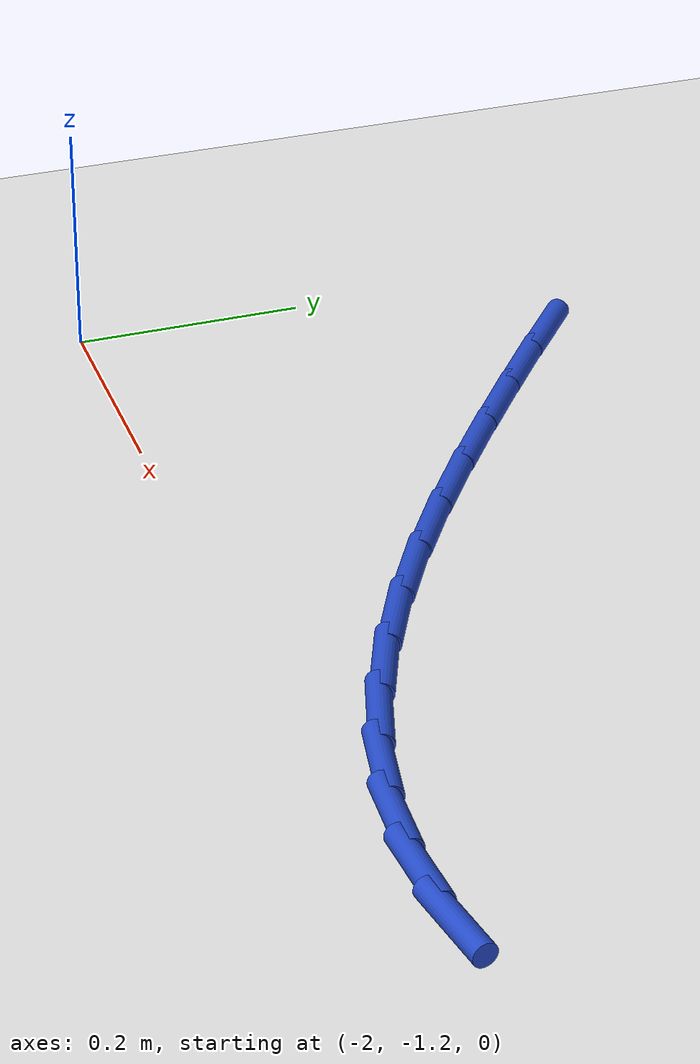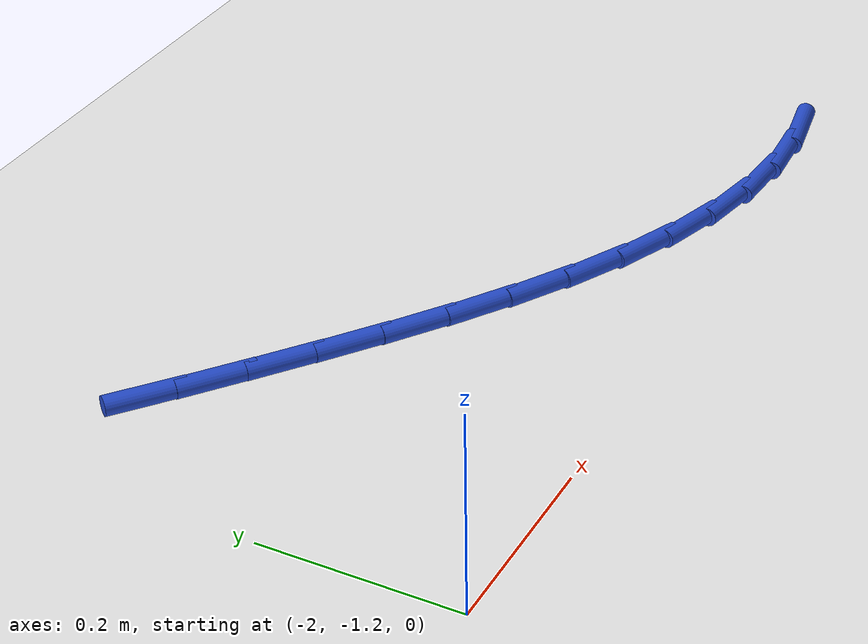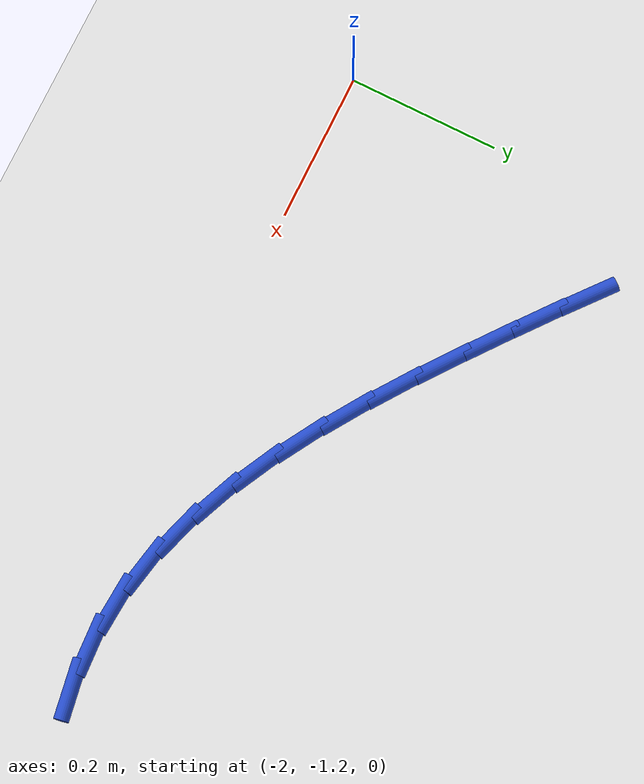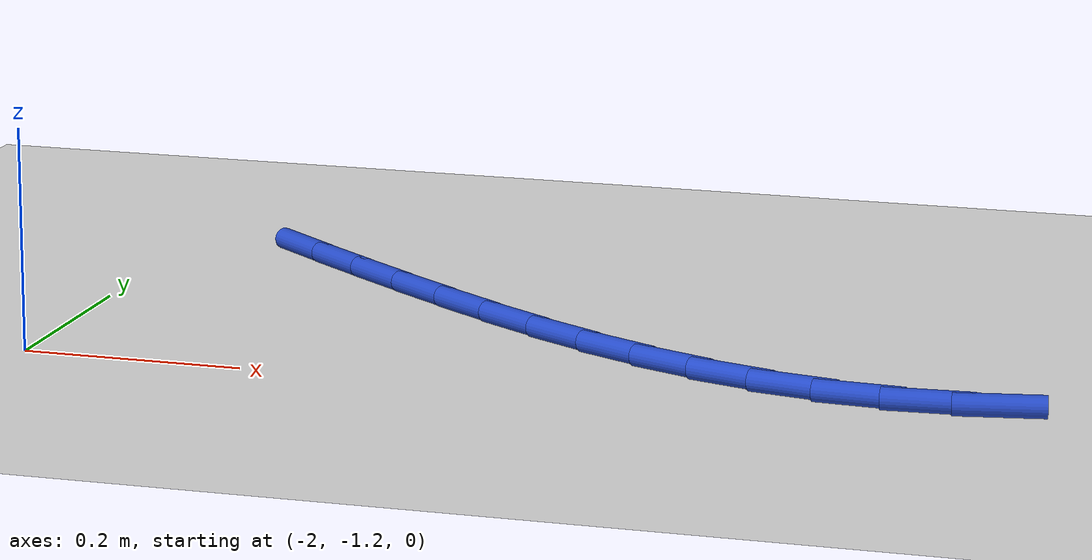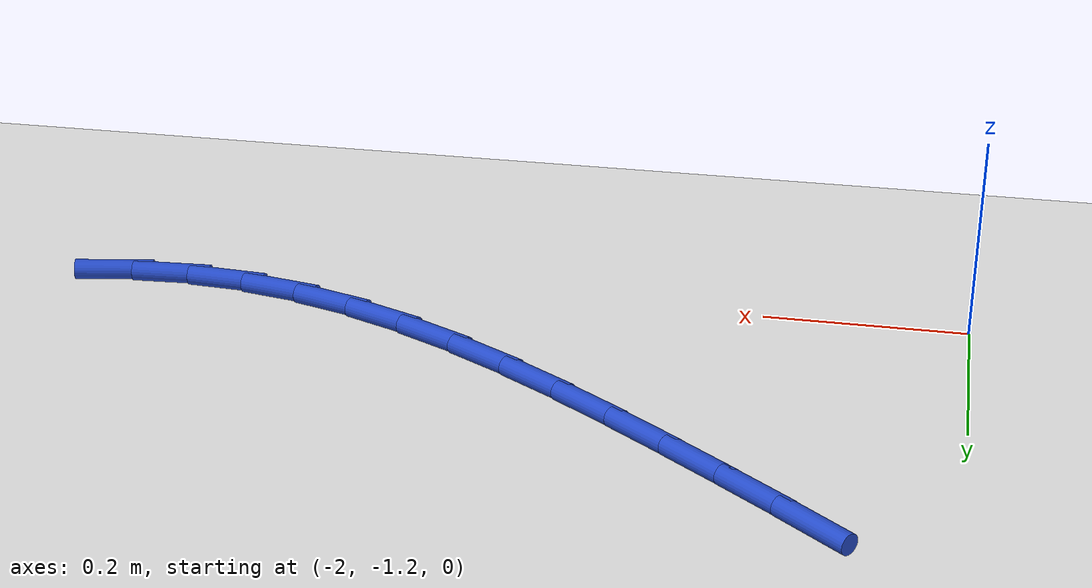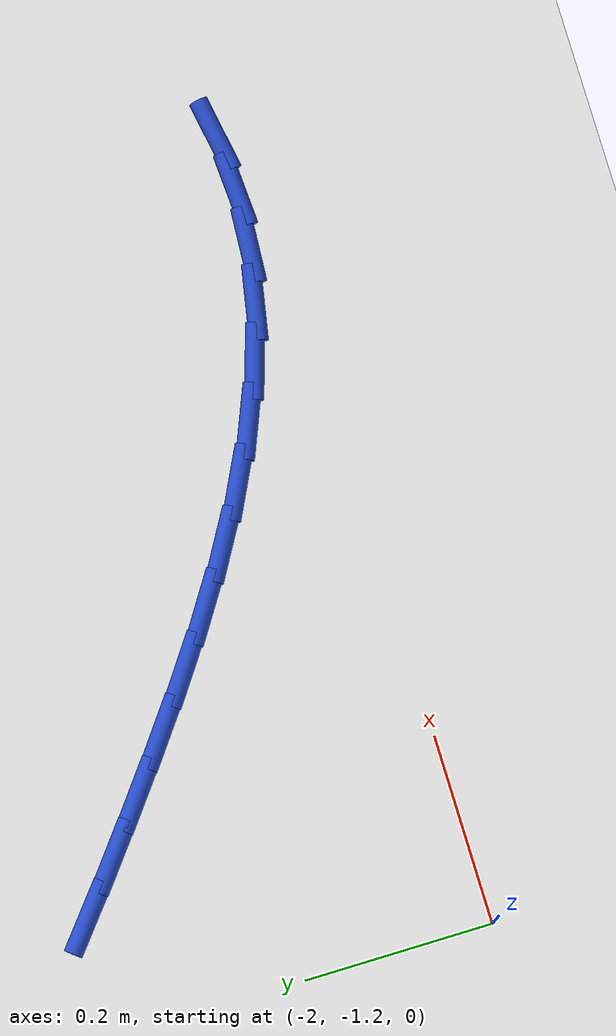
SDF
<sdf version="1.6">
 <world name="default">
  <model name="ground_plane">
   <static>1</static>
   <link name="link">
    <collision name="collision">
     <geometry><plane><normal>0 0 1</normal><size>100 100</size></plane></geometry>
     <surface><friction><ode><mu>100</mu><mu2>50</mu2></ode></friction></surface>
    </collision>
    <visual name="visual">
     <cast_shadows>0</cast_shadows>
     <geometry><plane><normal>0 0 1</normal><size>100 100</size></plane></geometry>
     <material>
      <script><uri>file://media/materials/scripts/gazebo.material</uri><name>Gazebo/WhiteGlow</name></script>
     </material>
    </visual>
   </link>
  </model>
  <model name="line">
   <link name="link_70">
    <pose>-1.8751228476702837 -0.8077967971142697 0.01 0 1.57 -0.6844594549576634</pose>
    <collision name="collision">
     <geometry><cylinder><radius>0.01</radius><length>0.08</length></cylinder></geometry>
    </collision>
    <visual name="visual">
     <material>
      <script><name>Gazebo/Blue</name><uri>file://media/materials/scripts/gazebo.material</uri></script>
     </material>
     <geometry><cylinder><radius>0.01</radius><length>0.08</length></cylinder></geometry>
    </visual>
   </link>
   <link name="link_71">
    <pose>-1.8232010946816748 -0.8501682580478371 0.01 0 1.57 -0.666535037641164</pose>
    <collision name="collision">
     <geometry><cylinder><radius>0.01</radius><length>0.08</length></cylinder></geometry>
    </collision>
    <visual name="visual">
     <material>
      <script><name>Gazebo/Blue</name><uri>file://media/materials/scripts/gazebo.material</uri></script>
     </material>
     <geometry><cylinder><radius>0.01</radius><length>0.08</length></cylinder></geometry>
    </visual>
   </link>
   <link name="link_72">
    <pose>-1.769993082902277 -0.8920232650805289 0.01 0 1.57 -0.6549771296445805</pose>
    <collision name="collision">
     <geometry><cylinder><radius>0.01</radius><length>0.08</length></cylinder></geometry>
    </collision>
    <visual name="visual">
     <material>
      <script><name>Gazebo/Blue</name><uri>file://media/materials/scripts/gazebo.material</uri></script>
     </material>
     <geometry><cylinder><radius>0.01</radius><length>0.08</length></cylinder></geometry>
    </visual>
   </link>
   <link name="link_73">
    <pose>-1.715929856881776 -0.9335485671584948 0.01 0 1.57 -0.6391101861839578</pose>
    <collision name="collision">
     <geometry><cylinder><radius>0.01</radius><length>0.08</length></cylinder></geometry>
    </collision>
    <visual name="visual">
     <material>
      <script><name>Gazebo/Blue</name><uri>file://media/materials/scripts/gazebo.material</uri></script>
     </material>
     <geometry><cylinder><radius>0.01</radius><length>0.08</length></cylinder></geometry>
    </visual>
   </link>
   <link name="link_74">
    <pose>-1.6611698198592586 -0.9742441271432979 0.01 0 1.57 -0.613413786815633</pose>
    <collision name="collision">
     <geometry><cylinder><radius>0.01</radius><length>0.08</length></cylinder></geometry>
    </collision>
    <visual name="visual">
     <material>
      <script><name>Gazebo/Blue</name><uri>file://media/materials/scripts/gazebo.material</uri></script>
     </material>
     <geometry><cylinder><radius>0.01</radius><length>0.08</length></cylinder></geometry>
    </visual>
   </link>
   <link name="link_75">
    <pose>-1.60573641194733 -1.0132699344823501 0.01 0 1.57 -0.5771121564330284</pose>
    <collision name="collision">
     <geometry><cylinder><radius>0.01</radius><length>0.08</length></cylinder></geometry>
    </collision>
    <visual name="visual">
     <material>
      <script><name>Gazebo/Blue</name><uri>file://media/materials/scripts/gazebo.material</uri></script>
     </material>
     <geometry><cylinder><radius>0.01</radius><length>0.08</length></cylinder></geometry>
    </visual>
   </link>
   <link name="link_76">
    <pose>-1.5496521098268807 -1.0497835517293097 0.01 0 1.57 -0.5290812122309648</pose>
    <collision name="collision">
     <geometry><cylinder><radius>0.01</radius><length>0.08</length></cylinder></geometry>
    </collision>
    <visual name="visual">
     <material>
      <script><name>Gazebo/Blue</name><uri>file://media/materials/scripts/gazebo.material</uri></script>
     </material>
     <geometry><cylinder><radius>0.01</radius><length>0.08</length></cylinder></geometry>
    </visual>
   </link>
   <link name="link_77">
    <pose>-1.4929393901788013 -1.0829425414378324 0.01 0 1.57 -0.4678620139351407</pose>
    <collision name="collision">
     <geometry><cylinder><radius>0.01</radius><length>0.08</length></cylinder></geometry>
    </collision>
    <visual name="visual">
     <material>
      <script><name>Gazebo/Blue</name><uri>file://media/materials/scripts/gazebo.material</uri></script>
     </material>
     <geometry><cylinder><radius>0.01</radius><length>0.08</length></cylinder></geometry>
    </visual>
   </link>
   <link name="link_78">
    <pose>-1.435620729683982 -1.111904466161576 0.01 0 1.57 -0.3917932860343763</pose>
    <collision name="collision">
     <geometry><cylinder><radius>0.01</radius><length>0.08</length></cylinder></geometry>
    </collision>
    <visual name="visual">
     <material>
      <script><name>Gazebo/Blue</name><uri>file://media/materials/scripts/gazebo.material</uri></script>
     </material>
     <geometry><cylinder><radius>0.01</radius><length>0.08</length></cylinder></geometry>
    </visual>
   </link>
   <link name="link_79">
    <pose>-1.377718605023315 -1.1358268884541964 0.01 0 1.57 -0.299308637099459</pose>
    <collision name="collision">
     <geometry><cylinder><radius>0.01</radius><length>0.08</length></cylinder></geometry>
    </collision>
    <visual name="visual">
     <material>
      <script><name>Gazebo/Blue</name><uri>file://media/materials/scripts/gazebo.material</uri></script>
     </material>
     <geometry><cylinder><radius>0.01</radius><length>0.08</length></cylinder></geometry>
    </visual>
   </link>
   <link name="link_80">
    <pose>-1.3192554928776892 -1.1538673708693516 0.01 0 1.57 -0.1894920154226297</pose>
    <collision name="collision">
     <geometry><cylinder><radius>0.01</radius><length>0.08</length></cylinder></geometry>
    </collision>
    <visual name="visual">
     <material>
      <script><name>Gazebo/Blue</name><uri>file://media/materials/scripts/gazebo.material</uri></script>
     </material>
     <geometry><cylinder><radius>0.01</radius><length>0.08</length></cylinder></geometry>
    </visual>
   </link>
   <link name="link_81">
    <pose>-1.2602538699279966 -1.165183475960698 0.01 0 1.57 -0.0643327622988874</pose>
    <collision name="collision">
     <geometry><cylinder><radius>0.01</radius><length>0.08</length></cylinder></geometry>
    </collision>
    <visual name="visual">
     <material>
      <script><name>Gazebo/Blue</name><uri>file://media/materials/scripts/gazebo.material</uri></script>
     </material>
     <geometry><cylinder><radius>0.01</radius><length>0.08</length></cylinder></geometry>
    </visual>
   </link>
   <link name="link_82">
    <pose>-1.2007423215244644 -1.1690173087514983 0.01 0 1.57 0.0582210873467693</pose>
    <collision name="collision">
     <geometry><cylinder><radius>0.01</radius><length>0.08</length></cylinder></geometry>
    </collision>
    <visual name="visual">
     <material>
      <script><name>Gazebo/Blue</name><uri>file://media/materials/scripts/gazebo.material</uri></script>
     </material>
     <geometry><cylinder><radius>0.01</radius><length>0.08</length></cylinder></geometry>
    </visual>
   </link>
   <link name="link_83">
    <pose>-1.1408154297271518 -1.1655243523719825 0.01 0 1.57 0.1663088381622982</pose>
    <collision name="collision">
     <geometry><cylinder><radius>0.01</radius><length>0.08</length></cylinder></geometry>
    </collision>
    <visual name="visual">
     <material>
      <script><name>Gazebo/Blue</name><uri>file://media/materials/scripts/gazebo.material</uri></script>
     </material>
     <geometry><cylinder><radius>0.01</radius><length>0.08</length></cylinder></geometry>
    </visual>
   </link>
  </model>
 </world>
</sdf>
